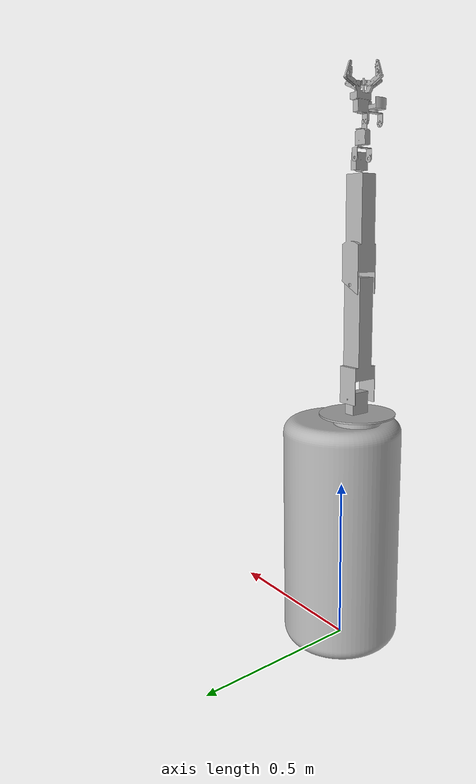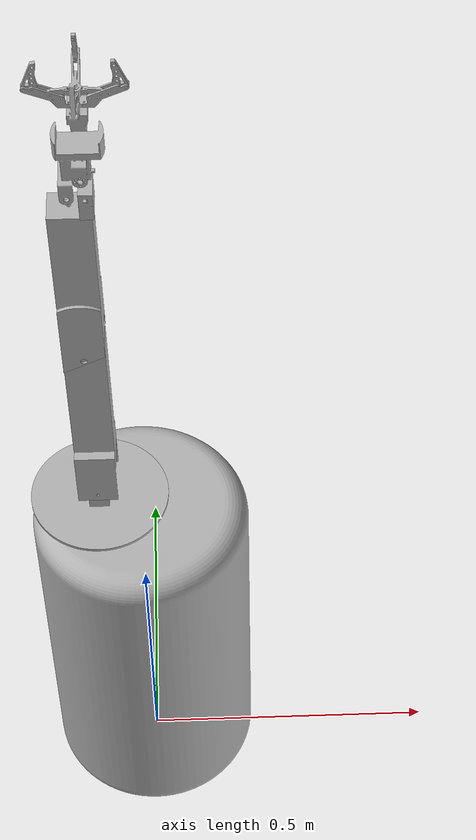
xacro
<?xml version="1.0" ?>
<robot name="roboticarm" xmlns:xacro="http://www.ros.org/wiki/xacro">

<xacro:include filename="$(find roboticarm_description)/urdf/materials.xacro" />
<xacro:include filename="$(find roboticarm_description)/urdf/roboticarm.trans" />
<xacro:include filename="$(find roboticarm_description)/urdf/roboticarm.gazebo" />
<link name="base_link">
  <inertial>
    <origin xyz="-6.126236204605508e-05 0.0 0.3559553216998673" rpy="0 0 0"/>
    <mass value="549.7939786248483"/>
    <inertia ixx="27.124843" iyy="27.12698" izz="8.618743" ixy="0.0" iyz="0.0" ixz="0.012393"/>
  </inertial>
  <visual>
    <origin xyz="0 0 0" rpy="0 0 0"/>
    <geometry>
      <mesh filename="file://$(find roboticarm_description)/meshes/base_link.stl" scale="0.001 0.001 0.001"/>
    </geometry>
    <material name="silver"/>
  </visual>
  <collision>
    <origin xyz="0 0 0" rpy="0 0 0"/>
    <geometry>
      <mesh filename="file://$(find roboticarm_description)/meshes/base_link.stl" scale="0.001 0.001 0.001"/>
    </geometry>
  </collision>
</link>

<link name="waist_1">
  <inertial>
    <origin xyz="-4.163336342344337e-16 0.0009104427321459631 0.015903844796416045" rpy="0 0 0"/>
    <mass value="2.5376552135525894"/>
    <inertia ixx="0.006217" iyy="0.006015" izz="0.010077" ixy="0.0" iyz="-5e-05" ixz="0.0"/>
  </inertial>
  <visual>
    <origin xyz="0.0635 -0.0 -0.7366" rpy="0 0 0"/>
    <geometry>
      <mesh filename="file://$(find roboticarm_description)/meshes/waist_1.stl" scale="0.001 0.001 0.001"/>
    </geometry>
    <material name="silver"/>
  </visual>
  <collision>
    <origin xyz="0.0635 -0.0 -0.7366" rpy="0 0 0"/>
    <geometry>
      <mesh filename="file://$(find roboticarm_description)/meshes/waist_1.stl" scale="0.001 0.001 0.001"/>
    </geometry>
  </collision>
</link>

<link name="shoulder_1">
  <inertial>
    <origin xyz="9.71445146547012e-17 -0.03584553168598965 0.1906430525761622" rpy="0 0 0"/>
    <mass value="8.062761032384062"/>
    <inertia ixx="0.067114" iyy="0.067471" izz="0.005059" ixy="0.0" iyz="-0.0003" ixz="-0.0"/>
  </inertial>
  <visual>
    <origin xyz="0.0635 -0.03777 -0.788518" rpy="0 0 0"/>
    <geometry>
      <mesh filename="file://$(find roboticarm_description)/meshes/shoulder_1.stl" scale="0.001 0.001 0.001"/>
    </geometry>
    <material name="silver"/>
  </visual>
  <collision>
    <origin xyz="0.0635 -0.03777 -0.788518" rpy="0 0 0"/>
    <geometry>
      <mesh filename="file://$(find roboticarm_description)/meshes/shoulder_1.stl" scale="0.001 0.001 0.001"/>
    </geometry>
  </collision>
</link>

<link name="elbow_1">
  <inertial>
    <origin xyz="-7.231520749681475e-05 -0.03320584879402316 0.15559840828012983" rpy="0 0 0"/>
    <mass value="7.521482396242973"/>
    <inertia ixx="0.04938" iyy="0.04967" izz="0.004753" ixy="1e-06" iyz="0.000784" ixz="-8.9e-05"/>
  </inertial>
  <visual>
    <origin xyz="0.0635 -0.03363 -1.115644" rpy="0 0 0"/>
    <geometry>
      <mesh filename="file://$(find roboticarm_description)/meshes/elbow_1.stl" scale="0.001 0.001 0.001"/>
    </geometry>
    <material name="silver"/>
  </visual>
  <collision>
    <origin xyz="0.0635 -0.03363 -1.115644" rpy="0 0 0"/>
    <geometry>
      <mesh filename="file://$(find roboticarm_description)/meshes/elbow_1.stl" scale="0.001 0.001 0.001"/>
    </geometry>
  </collision>
</link>

<link name="w_a_1">
  <inertial>
    <origin xyz="9.409140133698202e-15 -0.00013480940033086986 0.023018024103573786" rpy="0 0 0"/>
    <mass value="0.32955278928588533"/>
    <inertia ixx="0.000115" iyy="7.4e-05" izz="6.3e-05" ixy="0.0" iyz="1e-06" ixz="0.0"/>
  </inertial>
  <visual>
    <origin xyz="0.064008 0.000838 -1.418539" rpy="0 0 0"/>
    <geometry>
      <mesh filename="file://$(find roboticarm_description)/meshes/w_a_1.stl" scale="0.001 0.001 0.001"/>
    </geometry>
    <material name="silver"/>
  </visual>
  <collision>
    <origin xyz="0.064008 0.000838 -1.418539" rpy="0 0 0"/>
    <geometry>
      <mesh filename="file://$(find roboticarm_description)/meshes/w_a_1.stl" scale="0.001 0.001 0.001"/>
    </geometry>
  </collision>
</link>

<link name="w_b_1">
  <inertial>
    <origin xyz="6.022959908591474e-15 -0.023736499999999848 0.011335623939424444" rpy="0 0 0"/>
    <mass value="0.03411828668710707"/>
    <inertia ixx="2.4e-05" iyy="6e-06" izz="2e-05" ixy="0.0" iyz="0.0" ixz="-0.0"/>
  </inertial>
  <visual>
    <origin xyz="0.064008 -0.021768 -1.455547" rpy="0 0 0"/>
    <geometry>
      <mesh filename="file://$(find roboticarm_description)/meshes/w_b_1.stl" scale="0.001 0.001 0.001"/>
    </geometry>
    <material name="silver"/>
  </visual>
  <collision>
    <origin xyz="0.064008 -0.021768 -1.455547" rpy="0 0 0"/>
    <geometry>
      <mesh filename="file://$(find roboticarm_description)/meshes/w_b_1.stl" scale="0.001 0.001 0.001"/>
    </geometry>
  </collision>
</link>

<link name="w_c_1">
  <inertial>
    <origin xyz="-0.003951491072912233 -0.027299401705366138 0.06838528705274549" rpy="0 0 0"/>
    <mass value="0.6216016037280759"/>
    <inertia ixx="0.001485" iyy="0.001254" izz="0.000602" ixy="6.7e-05" iyz="0.000585" ixz="-0.000116"/>
  </inertial>
  <visual>
    <origin xyz="0.064008 0.001968 -1.482547" rpy="0 0 0"/>
    <geometry>
      <mesh filename="file://$(find roboticarm_description)/meshes/w_c_1.stl" scale="0.001 0.001 0.001"/>
    </geometry>
    <material name="silver"/>
  </visual>
  <collision>
    <origin xyz="0.064008 0.001968 -1.482547" rpy="0 0 0"/>
    <geometry>
      <mesh filename="file://$(find roboticarm_description)/meshes/w_c_1.stl" scale="0.001 0.001 0.001"/>
    </geometry>
  </collision>
</link>

<link name="gripper_1">
  <inertial>
    <origin xyz="-1.0010543181615539e-06 -0.004373051617807485 0.05098724133949806" rpy="0 0 0"/>
    <mass value="0.7040814534189734"/>
    <inertia ixx="0.00099" iyy="0.000924" izz="0.000643" ixy="-0.0" iyz="9.8e-05" ixz="-0.0"/>
  </inertial>
  <visual>
    <origin xyz="0.064008 0.001969 -1.569747" rpy="0 0 0"/>
    <geometry>
      <mesh filename="file://$(find roboticarm_description)/meshes/gripper_1.stl" scale="0.001 0.001 0.001"/>
    </geometry>
    <material name="silver"/>
  </visual>
  <collision>
    <origin xyz="0.064008 0.001969 -1.569747" rpy="0 0 0"/>
    <geometry>
      <mesh filename="file://$(find roboticarm_description)/meshes/gripper_1.stl" scale="0.001 0.001 0.001"/>
    </geometry>
  </collision>
</link>

<joint name="Revolute 11" type="continuous">
  <origin xyz="-0.0635 0.0 0.7366" rpy="0 0 0"/>
  <parent link="base_link"/>
  <child link="waist_1"/>
  <axis xyz="0.0 0.0 -1.0"/>
</joint>

<joint name="Revolute 12" type="continuous">
  <origin xyz="0.0 0.03777 0.051918" rpy="0 0 0"/>
  <parent link="waist_1"/>
  <child link="shoulder_1"/>
  <axis xyz="0.0 1.0 0.0"/>
</joint>

<joint name="Revolute 13" type="continuous">
  <origin xyz="0.0 -0.00414 0.327126" rpy="0 0 0"/>
  <parent link="shoulder_1"/>
  <child link="elbow_1"/>
  <axis xyz="0.0 1.0 0.0"/>
</joint>

<joint name="Revolute 18" type="continuous">
  <origin xyz="-0.000508 -0.034468 0.302895" rpy="0 0 0"/>
  <parent link="elbow_1"/>
  <child link="w_a_1"/>
  <axis xyz="0.0 0.0 1.0"/>
</joint>

<joint name="Revolute 19" type="continuous">
  <origin xyz="0.0 0.022606 0.037008" rpy="0 0 0"/>
  <parent link="w_a_1"/>
  <child link="w_b_1"/>
  <axis xyz="0.0 1.0 0.0"/>
</joint>

<joint name="Revolute 20" type="continuous">
  <origin xyz="0.0 -0.023736 0.027" rpy="0 0 0"/>
  <parent link="w_b_1"/>
  <child link="w_c_1"/>
  <axis xyz="0.0 -0.0 -1.0"/>
</joint>

<joint name="Rigid 21" type="fixed">
  <origin xyz="0.0 -1e-06 0.0872" rpy="0 0 0"/>
  <parent link="w_c_1"/>
  <child link="gripper_1"/>
</joint>

</robot>

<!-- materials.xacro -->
<robot name="roboticarm" xmlns:xacro="http://www.ros.org/wiki/xacro" >

<material name="silver">
  <color rgba="0.700 0.700 0.700 1.000"/>
</material>

</robot>

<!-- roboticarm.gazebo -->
<robot name="roboticarm" xmlns:xacro="http://www.ros.org/wiki/xacro" >

<xacro:property name="body_color" value="Gazebo/Silver" />

<gazebo>
  <plugin name="control" filename="libgazebo_ros_control.so"/>
</gazebo>
<gazebo reference="base_link">
  <material>${body_color}</material>
  <mu1>0.2</mu1>
  <mu2>0.2</mu2>
  <self_collide>true</self_collide>
  <gravity>true</gravity>
</gazebo>

<gazebo reference="waist_1">
  <material>${body_color}</material>
  <mu1>0.2</mu1>
  <mu2>0.2</mu2>
  <self_collide>true</self_collide>
</gazebo>

<gazebo reference="shoulder_1">
  <material>${body_color}</material>
  <mu1>0.2</mu1>
  <mu2>0.2</mu2>
  <self_collide>true</self_collide>
</gazebo>

<gazebo reference="elbow_1">
  <material>${body_color}</material>
  <mu1>0.2</mu1>
  <mu2>0.2</mu2>
  <self_collide>true</self_collide>
</gazebo>

<gazebo reference="w_a_1">
  <material>${body_color}</material>
  <mu1>0.2</mu1>
  <mu2>0.2</mu2>
  <self_collide>true</self_collide>
</gazebo>

<gazebo reference="w_b_1">
  <material>${body_color}</material>
  <mu1>0.2</mu1>
  <mu2>0.2</mu2>
  <self_collide>true</self_collide>
</gazebo>

<gazebo reference="w_c_1">
  <material>${body_color}</material>
  <mu1>0.2</mu1>
  <mu2>0.2</mu2>
  <self_collide>true</self_collide>
</gazebo>

<gazebo reference="gripper_1">
  <material>${body_color}</material>
  <mu1>0.2</mu1>
  <mu2>0.2</mu2>
  <self_collide>true</self_collide>
</gazebo>

</robot>
